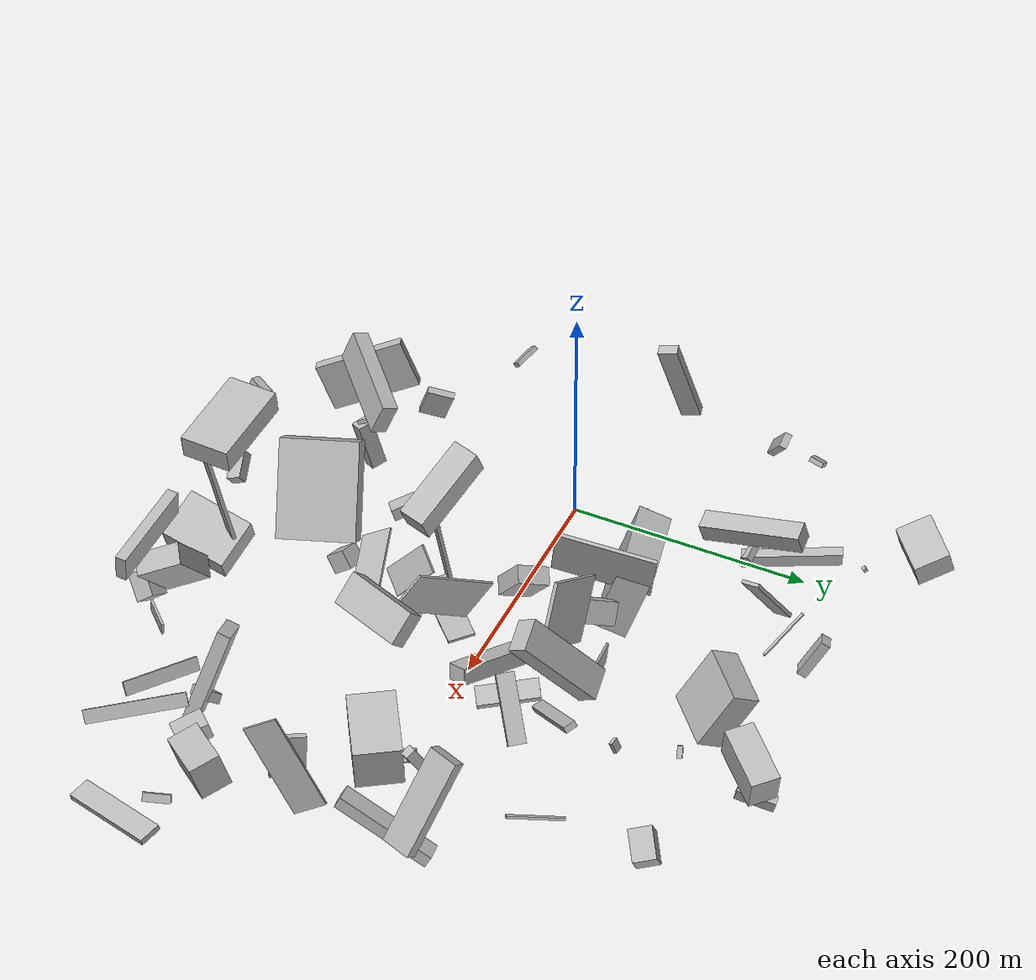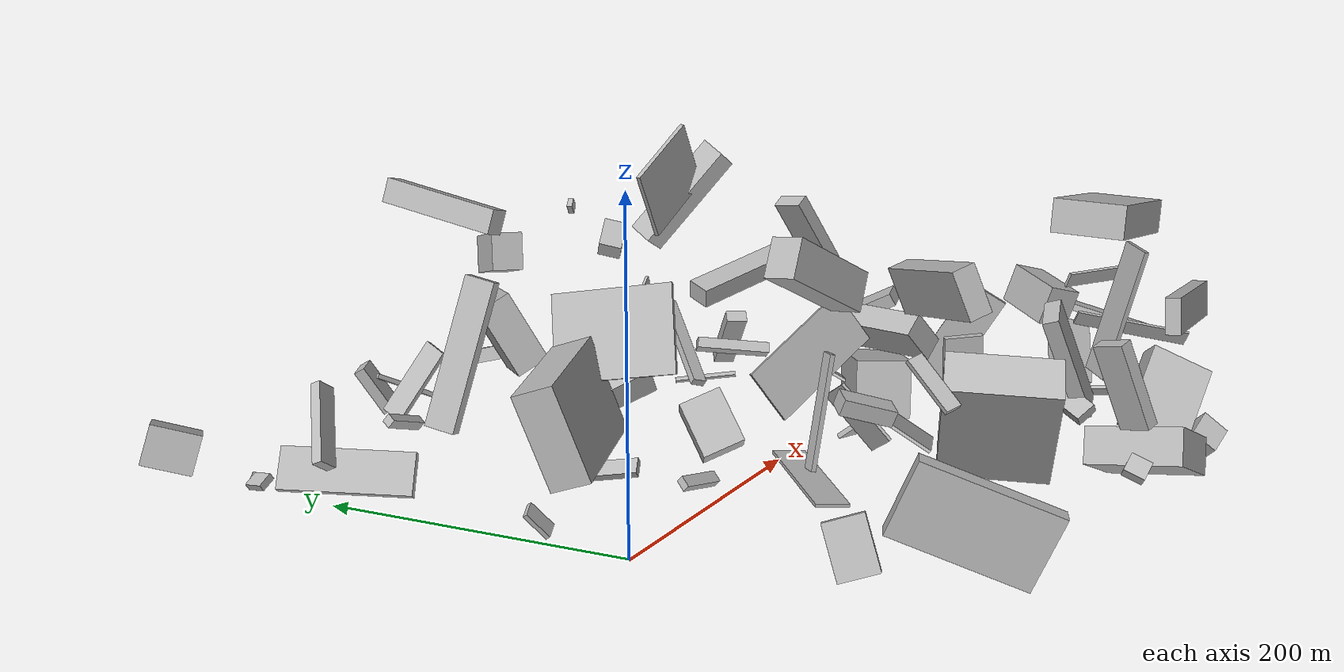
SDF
<sdf version="1.6">
 <world name="default">
  <scene>
   <sky><clouds><speed>12</speed></clouds></sky>
   <ambient>0.4 0.4 0.4 1</ambient>
   <background>0.7 0.7 0.7 1</background>
   <shadows>1</shadows>
  </scene>
  <gravity>0 0 -9.8066</gravity>
  <magnetic_field>6e-06 2.3e-05 -4.2e-05</magnetic_field>
  <physics default="0" name="default_physics" type="ode">
   <ode>
    <solver>
     <type>quick</type>
     <iters>10</iters>
     <sor>1.0</sor>
     <use_dynamic_moi_rescaling>0</use_dynamic_moi_rescaling>
    </solver>
    <constraints>
     <cfm>0</cfm>
     <erp>0.2</erp>
     <contact_max_correcting_vel>100</contact_max_correcting_vel>
     <contact_surface_layer>0.001</contact_surface_layer>
    </constraints>
   </ode>
   <max_step_size>0.004</max_step_size>
   <real_time_factor>1</real_time_factor>
   <real_time_update_rate>250</real_time_update_rate>
  </physics>
  <light name="sun" type="directional">
   <pose>0 0 10 0 0 0</pose>
   <diffuse>0.8 0.8 0.8 1</diffuse>
   <specular>0.2 0.2 0.2 1</specular>
   <attenuation>
    <range>1000</range>
    <constant>0.9</constant>
    <linear>0.01</linear>
    <quadratic>0.001</quadratic>
   </attenuation>
   <direction>-0.5 0.1 -0.9</direction>
  </light>
  <model name="building_1">
   <static>0</static>
   <pose>430.8263136940085 -161.70131128818474 9.466605463029902 1.6171492641649488 -0.9882049014473183 -2.855715015803919</pose>
   <link name="link">
    <gravity>0</gravity>
    <pose>0 0 11.0 0 0 0</pose>
    <collision name="collision"><geometry><box><size>7 3 22</size></box></geometry></collision>
    <visual name="visual">
     <cast_shadows>0</cast_shadows>
     <geometry><box><size>7 3 22</size></box></geometry>
     <material>
      <script>
       <uri>model://HANNAS_wall/materials/scripts</uri>
       <uri>model://HANNAS_wall/materials/textures</uri>
       <name>vrc/HANNAS_wall</name>
      </script>
     </material>
    </visual>
   </link>
  </model>
  <model name="building_2">
   <static>0</static>
   <pose>62.551764821610426 -142.76427907720768 97.82650740843052 1.2379356627731757 -0.7193909790254917 1.248309874934452</pose>
   <link name="link">
    <gravity>0</gravity>
    <pose>0 0 5.0 0 0 0</pose>
    <collision name="collision"><geometry><box><size>35 3 10</size></box></geometry></collision>
    <visual name="visual">
     <cast_shadows>0</cast_shadows>
     <geometry><box><size>35 3 10</size></box></geometry>
     <material>
      <script>
       <uri>model://HANNAS_wall/materials/scripts</uri>
       <uri>model://HANNAS_wall/materials/textures</uri>
       <name>vrc/HANNAS_wall</name>
      </script>
     </material>
    </visual>
   </link>
  </model>
  <model name="building_3">
   <static>0</static>
   <pose>251.2767208394601 -260.70147875214747 28.66937128211714 -0.7793488862594024 -0.5159328318028393 -0.26897297087756045</pose>
   <link name="link">
    <gravity>0</gravity>
    <pose>0 0 8.5 0 0 0</pose>
    <collision name="collision"><geometry><box><size>18 23 17</size></box></geometry></collision>
    <visual name="visual">
     <cast_shadows>0</cast_shadows>
     <geometry><box><size>18 23 17</size></box></geometry>
     <material>
      <script>
       <uri>model://HANNAS_wall/materials/scripts</uri>
       <uri>model://HANNAS_wall/materials/textures</uri>
       <name>vrc/HANNAS_wall</name>
      </script>
     </material>
    </visual>
   </link>
  </model>
  <model name="building_4">
   <static>0</static>
   <pose>167.25772231259472 -230.35305259501075 49.05170953395561 -2.767167087895499 1.1645042523255014 -2.91086231266983</pose>
   <link name="link">
    <gravity>0</gravity>
    <pose>0 0 21.0 0 0 0</pose>
    <collision name="collision"><geometry><box><size>22 57 42</size></box></geometry></collision>
    <visual name="visual">
     <cast_shadows>0</cast_shadows>
     <geometry><box><size>22 57 42</size></box></geometry>
     <material>
      <script>
       <uri>model://HANNAS_wall/materials/scripts</uri>
       <uri>model://HANNAS_wall/materials/textures</uri>
       <name>vrc/HANNAS_wall</name>
      </script>
     </material>
    </visual>
   </link>
  </model>
  <model name="building_5">
   <static>0</static>
   <pose>106.59794020016844 -245.33968757094155 56.62983458666531 -2.0357834085733573 0.3785618042685621 -1.5011525509562051</pose>
   <link name="link">
    <gravity>0</gravity>
    <pose>0 0 12.0 0 0 0</pose>
    <collision name="collision"><geometry><box><size>12 10 24</size></box></geometry></collision>
    <visual name="visual">
     <cast_shadows>0</cast_shadows>
     <geometry><box><size>12 10 24</size></box></geometry>
     <material>
      <script>
       <uri>model://HANNAS_wall/materials/scripts</uri>
       <uri>model://HANNAS_wall/materials/textures</uri>
       <name>vrc/HANNAS_wall</name>
      </script>
     </material>
    </visual>
   </link>
  </model>
  <model name="building_6">
   <static>0</static>
   <pose>229.80723237036378 -229.11642895965707 38.57481201956154 0.5488849251018836 -0.4299970350359862 1.9247059243491178</pose>
   <link name="link">
    <gravity>0</gravity>
    <pose>0 0 25.0 0 0 0</pose>
    <collision name="collision"><geometry><box><size>38 18 50</size></box></geometry></collision>
    <visual name="visual">
     <cast_shadows>0</cast_shadows>
     <geometry><box><size>38 18 50</size></box></geometry>
     <material>
      <script>
       <uri>model://HANNAS_wall/materials/scripts</uri>
       <uri>model://HANNAS_wall/materials/textures</uri>
       <name>vrc/HANNAS_wall</name>
      </script>
     </material>
    </visual>
   </link>
  </model>
  <model name="building_7">
   <static>0</static>
   <pose>81.66097739175035 -147.0577773170565 149.37455509283876 -2.720855311112564 -1.1946183886224258 1.9302838274795509</pose>
   <link name="link">
    <gravity>0</gravity>
    <pose>0 0 6.5 0 0 0</pose>
    <collision name="collision"><geometry><box><size>27 80 13</size></box></geometry></collision>
    <visual name="visual">
     <cast_shadows>0</cast_shadows>
     <geometry><box><size>27 80 13</size></box></geometry>
     <material>
      <script>
       <uri>model://HANNAS_wall/materials/scripts</uri>
       <uri>model://HANNAS_wall/materials/textures</uri>
       <name>vrc/HANNAS_wall</name>
      </script>
     </material>
    </visual>
   </link>
  </model>
  <model name="building_8">
   <static>0</static>
   <pose>268.66837884523653 -243.1983966291285 110.43156543119667 2.5954694184663896 1.4883504685091293 -2.1423371896197705</pose>
   <link name="link">
    <gravity>0</gravity>
    <pose>0 0 4.5 0 0 0</pose>
    <collision name="collision"><geometry><box><size>22 80 9</size></box></geometry></collision>
    <visual name="visual">
     <cast_shadows>0</cast_shadows>
     <geometry><box><size>22 80 9</size></box></geometry>
     <material>
      <script>
       <uri>model://HANNAS_wall/materials/scripts</uri>
       <uri>model://HANNAS_wall/materials/textures</uri>
       <name>vrc/HANNAS_wall</name>
      </script>
     </material>
    </visual>
   </link>
  </model>
  <model name="building_9">
   <static>0</static>
   <pose>388.18183163478705 -136.98014797581266 43.14530476585896 -0.5051339805458146 1.0219225418875078 -2.7485619086512</pose>
   <link name="link">
    <gravity>0</gravity>
    <pose>0 0 7.0 0 0 0</pose>
    <collision name="collision"><geometry><box><size>44 26 14</size></box></geometry></collision>
    <visual name="visual">
     <cast_shadows>0</cast_shadows>
     <geometry><box><size>44 26 14</size></box></geometry>
     <material>
      <script>
       <uri>model://HANNAS_wall/materials/scripts</uri>
       <uri>model://HANNAS_wall/materials/textures</uri>
       <name>vrc/HANNAS_wall</name>
      </script>
     </material>
    </visual>
   </link>
  </model>
  <model name="building_10">
   <static>0</static>
   <pose>270.46613417402324 58.90960341365753 110.9254743749462 2.836140064273815 0.240733890816135 2.6804442743922725</pose>
   <link name="link">
    <gravity>0</gravity>
    <pose>0 0 6.5 0 0 0</pose>
    <collision name="collision"><geometry><box><size>80 17 13</size></box></geometry></collision>
    <visual name="visual">
     <cast_shadows>0</cast_shadows>
     <geometry><box><size>80 17 13</size></box></geometry>
     <material>
      <script>
       <uri>model://HANNAS_wall/materials/scripts</uri>
       <uri>model://HANNAS_wall/materials/textures</uri>
       <name>vrc/HANNAS_wall</name>
      </script>
     </material>
    </visual>
   </link>
  </model>
  <model name="building_11">
   <static>0</static>
   <pose>139.2656520781938 44.32724979894509 95.19093340067072 1.7292905528808 -0.32041728901416217 -3.0017420129149426</pose>
   <link name="link">
    <gravity>0</gravity>
    <pose>0 0 40.0 0 0 0</pose>
    <collision name="collision"><geometry><box><size>3 57 80</size></box></geometry></collision>
    <visual name="visual">
     <cast_shadows>0</cast_shadows>
     <geometry><box><size>3 57 80</size></box></geometry>
     <material>
      <script>
       <uri>model://HANNAS_wall/materials/scripts</uri>
       <uri>model://HANNAS_wall/materials/textures</uri>
       <name>vrc/HANNAS_wall</name>
      </script>
     </material>
    </visual>
   </link>
  </model>
  <model name="building_12">
   <static>0</static>
   <pose>327.6667788939231 116.12963933377144 12.893298364794706 -3.025770638347501 0.45454335312678085 -2.61660695256297</pose>
   <link name="link">
    <gravity>0</gravity>
    <pose>0 0 1.0 0 0 0</pose>
    <collision name="collision"><geometry><box><size>4 45 2</size></box></geometry></collision>
    <visual name="visual">
     <cast_shadows>0</cast_shadows>
     <geometry><box><size>4 45 2</size></box></geometry>
     <material>
      <script>
       <uri>model://HANNAS_wall/materials/scripts</uri>
       <uri>model://HANNAS_wall/materials/textures</uri>
       <name>vrc/HANNAS_wall</name>
      </script>
     </material>
    </visual>
   </link>
  </model>
  <model name="building_13">
   <static>0</static>
   <pose>198.38156505484713 -22.402890775492438 71.50017005110476 1.8742247151230562 -0.9492574177380815 2.2428251752101143</pose>
   <link name="link">
    <gravity>0</gravity>
    <pose>0 0 1.0 0 0 0</pose>
    <collision name="collision"><geometry><box><size>38 80 2</size></box></geometry></collision>
    <visual name="visual">
     <cast_shadows>0</cast_shadows>
     <geometry><box><size>38 80 2</size></box></geometry>
     <material>
      <script>
       <uri>model://HANNAS_wall/materials/scripts</uri>
       <uri>model://HANNAS_wall/materials/textures</uri>
       <name>vrc/HANNAS_wall</name>
      </script>
     </material>
    </visual>
   </link>
  </model>
  <model name="building_14">
   <static>0</static>
   <pose>-31.56395456510294 -143.14256535925176 26.16620042066375 -0.29731102748056826 0.22567794583921638 0.3206685249543024</pose>
   <link name="link">
    <gravity>0</gravity>
    <pose>0 0 15.0 0 0 0</pose>
    <collision name="collision"><geometry><box><size>6 22 30</size></box></geometry></collision>
    <visual name="visual">
     <cast_shadows>0</cast_shadows>
     <geometry><box><size>6 22 30</size></box></geometry>
     <material>
      <script>
       <uri>model://HANNAS_wall/materials/scripts</uri>
       <uri>model://HANNAS_wall/materials/textures</uri>
       <name>vrc/HANNAS_wall</name>
      </script>
     </material>
    </visual>
   </link>
  </model>
  <model name="building_15">
   <static>0</static>
   <pose>390.1666998856054 -161.3324051590491 101.76477988952969 -0.06378880304285126 1.0548754887237481 0.8766586258933834</pose>
   <link name="link">
    <gravity>0</gravity>
    <pose>0 0 1.0 0 0 0</pose>
    <collision name="collision"><geometry><box><size>11 60 2</size></box></geometry></collision>
    <visual name="visual">
     <cast_shadows>0</cast_shadows>
     <geometry><box><size>11 60 2</size></box></geometry>
     <material>
      <script>
       <uri>model://HANNAS_wall/materials/scripts</uri>
       <uri>model://HANNAS_wall/materials/textures</uri>
       <name>vrc/HANNAS_wall</name>
      </script>
     </material>
    </visual>
   </link>
  </model>
  <model name="building_16">
   <static>0</static>
   <pose>-62.12972092125744 -80.82499755673206 76.12322841048112 -1.3881380062658693 -0.7447640865120262 1.2032691487958214</pose>
   <link name="link">
    <gravity>0</gravity>
    <pose>0 0 11.5 0 0 0</pose>
    <collision name="collision"><geometry><box><size>6 4 23</size></box></geometry></collision>
    <visual name="visual">
     <cast_shadows>0</cast_shadows>
     <geometry><box><size>6 4 23</size></box></geometry>
     <material>
      <script>
       <uri>model://HANNAS_wall/materials/scripts</uri>
       <uri>model://HANNAS_wall/materials/textures</uri>
       <name>vrc/HANNAS_wall</name>
      </script>
     </material>
    </visual>
   </link>
  </model>
  <model name="building_17">
   <static>0</static>
   <pose>238.55142604775997 115.9403474696835 151.94298209045425 -1.0000655131302576 0.09462455595126978 -1.677325518079287</pose>
   <link name="link">
    <gravity>0</gravity>
    <pose>0 0 29.5 0 0 0</pose>
    <collision name="collision"><geometry><box><size>3 52 59</size></box></geometry></collision>
    <visual name="visual">
     <cast_shadows>0</cast_shadows>
     <geometry><box><size>3 52 59</size></box></geometry>
     <material>
      <script>
       <uri>model://HANNAS_wall/materials/scripts</uri>
       <uri>model://HANNAS_wall/materials/textures</uri>
       <name>vrc/HANNAS_wall</name>
      </script>
     </material>
    </visual>
   </link>
  </model>
  <model name="building_18">
   <static>0</static>
   <pose>292.7779153200936 -37.20957112462413 28.603130103235543 1.6702274930733365 -0.03099686218678983 2.116560840008915</pose>
   <link name="link">
    <gravity>0</gravity>
    <pose>0 0 29.0 0 0 0</pose>
    <collision name="collision"><geometry><box><size>38 40 58</size></box></geometry></collision>
    <visual name="visual">
     <cast_shadows>0</cast_shadows>
     <geometry><box><size>38 40 58</size></box></geometry>
     <material>
      <script>
       <uri>model://HANNAS_wall/materials/scripts</uri>
       <uri>model://HANNAS_wall/materials/textures</uri>
       <name>vrc/HANNAS_wall</name>
      </script>
     </material>
    </visual>
   </link>
  </model>
  <model name="building_19">
   <static>0</static>
   <pose>361.7110779613713 -57.80650272388954 35.06598094407926 1.1587157811392172 1.404185807850506 0.17102479302428236</pose>
   <link name="link">
    <gravity>0</gravity>
    <pose>0 0 14.0 0 0 0</pose>
    <collision name="collision"><geometry><box><size>37 5 28</size></box></geometry></collision>
    <visual name="visual">
     <cast_shadows>0</cast_shadows>
     <geometry><box><size>37 5 28</size></box></geometry>
     <material>
      <script>
       <uri>model://HANNAS_wall/materials/scripts</uri>
       <uri>model://HANNAS_wall/materials/textures</uri>
       <name>vrc/HANNAS_wall</name>
      </script>
     </material>
    </visual>
   </link>
  </model>
  <model name="building_20">
   <static>0</static>
   <pose>137.3115261027869 -51.07300243624302 55.29548969622988 1.534870684071611 -1.4069636478725143 -0.7002356874009145</pose>
   <link name="link">
    <gravity>0</gravity>
    <pose>0 0 4.5 0 0 0</pose>
    <collision name="collision"><geometry><box><size>71 3 9</size></box></geometry></collision>
    <visual name="visual">
     <cast_shadows>0</cast_shadows>
     <geometry><box><size>71 3 9</size></box></geometry>
     <material>
      <script>
       <uri>model://HANNAS_wall/materials/scripts</uri>
       <uri>model://HANNAS_wall/materials/textures</uri>
       <name>vrc/HANNAS_wall</name>
      </script>
     </material>
    </visual>
   </link>
  </model>
  <model name="building_21">
   <static>0</static>
   <pose>257.0029182662432 60.60013214852117 52.822389749415024 0.41730781810167206 -0.09859340027801669 2.0954448100305045</pose>
   <link name="link">
    <gravity>0</gravity>
    <pose>0 0 3.5 0 0 0</pose>
    <collision name="collision"><geometry><box><size>49 16 7</size></box></geometry></collision>
    <visual name="visual">
     <cast_shadows>0</cast_shadows>
     <geometry><box><size>49 16 7</size></box></geometry>
     <material>
      <script>
       <uri>model://HANNAS_wall/materials/scripts</uri>
       <uri>model://HANNAS_wall/materials/textures</uri>
       <name>vrc/HANNAS_wall</name>
      </script>
     </material>
    </visual>
   </link>
  </model>
  <model name="building_22">
   <static>0</static>
   <pose>296.285058345666 -214.92285379806293 42.04906233782711 0.18725649658137883 -1.2895494379976817 0.6705174443024094</pose>
   <link name="link">
    <gravity>0</gravity>
    <pose>0 0 12.0 0 0 0</pose>
    <collision name="collision"><geometry><box><size>14 2 24</size></box></geometry></collision>
    <visual name="visual">
     <cast_shadows>0</cast_shadows>
     <geometry><box><size>14 2 24</size></box></geometry>
     <material>
      <script>
       <uri>model://HANNAS_wall/materials/scripts</uri>
       <uri>model://HANNAS_wall/materials/textures</uri>
       <name>vrc/HANNAS_wall</name>
      </script>
     </material>
    </visual>
   </link>
  </model>
  <model name="building_23">
   <static>0</static>
   <pose>-93.17700562350139 173.91090740568006 43.27045679358962 1.0161512228307399 0.12806249327123165 1.401452454995515</pose>
   <link name="link">
    <gravity>0</gravity>
    <pose>0 0 4.5 0 0 0</pose>
    <collision name="collision"><geometry><box><size>12 4 9</size></box></geometry></collision>
    <visual name="visual">
     <cast_shadows>0</cast_shadows>
     <geometry><box><size>12 4 9</size></box></geometry>
     <material>
      <script>
       <uri>model://HANNAS_wall/materials/scripts</uri>
       <uri>model://HANNAS_wall/materials/textures</uri>
       <name>vrc/HANNAS_wall</name>
      </script>
     </material>
    </visual>
   </link>
  </model>
  <model name="building_24">
   <static>0</static>
   <pose>296.3103842975701 261.83981367049944 100.28322323533803 1.5331593055031492 -0.20840503673864097 -2.324262875971162</pose>
   <link name="link">
    <gravity>0</gravity>
    <pose>0 0 11.5 0 0 0</pose>
    <collision name="collision"><geometry><box><size>50 28 23</size></box></geometry></collision>
    <visual name="visual">
     <cast_shadows>0</cast_shadows>
     <geometry><box><size>50 28 23</size></box></geometry>
     <material>
      <script>
       <uri>model://HANNAS_wall/materials/scripts</uri>
       <uri>model://HANNAS_wall/materials/textures</uri>
       <name>vrc/HANNAS_wall</name>
      </script>
     </material>
    </visual>
   </link>
  </model>
  <model name="building_25">
   <static>0</static>
   <pose>260.88548931080084 149.00889477249666 45.416643274850145 -2.7681411450894142 0.11970650542939033 -0.14563520190767537</pose>
   <link name="link">
    <gravity>0</gravity>
    <pose>0 0 5.0 0 0 0</pose>
    <collision name="collision"><geometry><box><size>7 3 10</size></box></geometry></collision>
    <visual name="visual">
     <cast_shadows>0</cast_shadows>
     <geometry><box><size>7 3 10</size></box></geometry>
     <material>
      <script>
       <uri>model://HANNAS_wall/materials/scripts</uri>
       <uri>model://HANNAS_wall/materials/textures</uri>
       <name>vrc/HANNAS_wall</name>
      </script>
     </material>
    </visual>
   </link>
  </model>
  <model name="building_26">
   <static>0</static>
   <pose>72.98279122073578 210.23037193739086 35.42247852689274 0.5174055192708985 -0.32973930714921135 1.2684892026479897</pose>
   <link name="link">
    <gravity>0</gravity>
    <pose>0 0 25.5 0 0 0</pose>
    <collision name="collision"><geometry><box><size>17 3 51</size></box></geometry></collision>
    <visual name="visual">
     <cast_shadows>0</cast_shadows>
     <geometry><box><size>17 3 51</size></box></geometry>
     <material>
      <script>
       <uri>model://HANNAS_wall/materials/scripts</uri>
       <uri>model://HANNAS_wall/materials/textures</uri>
       <name>vrc/HANNAS_wall</name>
      </script>
     </material>
    </visual>
   </link>
  </model>
  <model name="building_27">
   <static>0</static>
   <pose>162.20300851966206 -101.87224587182979 40.66956897964758 0.18665006140884485 -0.5438622129709311 1.7678173602736411</pose>
   <link name="link">
    <gravity>0</gravity>
    <pose>0 0 1.0 0 0 0</pose>
    <collision name="collision"><geometry><box><size>27 61 2</size></box></geometry></collision>
    <visual name="visual">
     <cast_shadows>0</cast_shadows>
     <geometry><box><size>27 61 2</size></box></geometry>
     <material>
      <script>
       <uri>model://HANNAS_wall/materials/scripts</uri>
       <uri>model://HANNAS_wall/materials/textures</uri>
       <name>vrc/HANNAS_wall</name>
      </script>
     </material>
    </visual>
   </link>
  </model>
  <model name="building_28">
   <static>0</static>
   <pose>137.87313356113188 94.03569757594018 46.87490028636654 1.1327963600034798 -0.4880472349329135 0.9450382277671397</pose>
   <link name="link">
    <gravity>0</gravity>
    <pose>0 0 16.0 0 0 0</pose>
    <collision name="collision"><geometry><box><size>14 19 32</size></box></geometry></collision>
    <visual name="visual">
     <cast_shadows>0</cast_shadows>
     <geometry><box><size>14 19 32</size></box></geometry>
     <material>
      <script>
       <uri>model://HANNAS_wall/materials/scripts</uri>
       <uri>model://HANNAS_wall/materials/textures</uri>
       <name>vrc/HANNAS_wall</name>
      </script>
     </material>
    </visual>
   </link>
  </model>
  <model name="building_29">
   <static>0</static>
   <pose>149.84977261734298 -137.89266706717115 16.32485836509435 1.8717714546420934 -0.8280266820086575 -2.0086346892463345</pose>
   <link name="link">
    <gravity>0</gravity>
    <pose>0 0 8.5 0 0 0</pose>
    <collision name="collision"><geometry><box><size>16 19 17</size></box></geometry></collision>
    <visual name="visual">
     <cast_shadows>0</cast_shadows>
     <geometry><box><size>16 19 17</size></box></geometry>
     <material>
      <script>
       <uri>model://HANNAS_wall/materials/scripts</uri>
       <uri>model://HANNAS_wall/materials/textures</uri>
       <name>vrc/HANNAS_wall</name>
      </script>
     </material>
    </visual>
   </link>
  </model>
  <model name="building_30">
   <static>0</static>
   <pose>186.49596117038325 192.60966700682255 65.77129403650193 1.6850917166500217 0.5081161344505125 2.384310792265199</pose>
   <link name="link">
    <gravity>0</gravity>
    <pose>0 0 24.0 0 0 0</pose>
    <collision name="collision"><geometry><box><size>24 53 48</size></box></geometry></collision>
    <visual name="visual">
     <cast_shadows>0</cast_shadows>
     <geometry><box><size>24 53 48</size></box></geometry>
     <material>
      <script>
       <uri>model://HANNAS_wall/materials/scripts</uri>
       <uri>model://HANNAS_wall/materials/textures</uri>
       <name>vrc/HANNAS_wall</name>
      </script>
     </material>
    </visual>
   </link>
  </model>
  <model name="building_31">
   <static>0</static>
   <pose>210.8398222492583 -198.63255486964493 77.16900223739992 -0.19350711849225002 -0.16406013463193123 2.394662011900718</pose>
   <link name="link">
    <gravity>0</gravity>
    <pose>0 0 40.0 0 0 0</pose>
    <collision name="collision"><geometry><box><size>3 19 80</size></box></geometry></collision>
    <visual name="visual">
     <cast_shadows>0</cast_shadows>
     <geometry><box><size>3 19 80</size></box></geometry>
     <material>
      <script>
       <uri>model://HANNAS_wall/materials/scripts</uri>
       <uri>model://HANNAS_wall/materials/textures</uri>
       <name>vrc/HANNAS_wall</name>
      </script>
     </material>
    </visual>
   </link>
  </model>
  <model name="building_32">
   <static>0</static>
   <pose>-65.65235547011628 72.39294871240091 81.05887054752421 0.23322839342181167 0.20819549253249708 0.2302161842044695</pose>
   <link name="link">
    <gravity>0</gravity>
    <pose>0 0 40.0 0 0 0</pose>
    <collision name="collision"><geometry><box><size>8 16 80</size></box></geometry></collision>
    <visual name="visual">
     <cast_shadows>0</cast_shadows>
     <geometry><box><size>8 16 80</size></box></geometry>
     <material>
      <script>
       <uri>model://HANNAS_wall/materials/scripts</uri>
       <uri>model://HANNAS_wall/materials/textures</uri>
       <name>vrc/HANNAS_wall</name>
      </script>
     </material>
    </visual>
   </link>
  </model>
  <model name="building_33">
   <static>0</static>
   <pose>225.42743773569018 118.37851271502605 75.63973786495028 1.678358795716275 -1.1150509890395004 -3.0443740357604536</pose>
   <link name="link">
    <gravity>0</gravity>
    <pose>0 0 1.0 0 0 0</pose>
    <collision name="collision"><geometry><box><size>16 80 2</size></box></geometry></collision>
    <visual name="visual">
     <cast_shadows>0</cast_shadows>
     <geometry><box><size>16 80 2</size></box></geometry>
     <material>
      <script>
       <uri>model://HANNAS_wall/materials/scripts</uri>
       <uri>model://HANNAS_wall/materials/textures</uri>
       <name>vrc/HANNAS_wall</name>
      </script>
     </material>
    </visual>
   </link>
  </model>
  <model name="building_34">
   <static>0</static>
   <pose>193.70434785046336 -59.29101212167987 32.6633712637281 2.959280401839803 0.891328132399601 -1.8555884062510741</pose>
   <link name="link">
    <gravity>0</gravity>
    <pose>0 0 6.0 0 0 0</pose>
    <collision name="collision"><geometry><box><size>3 27 12</size></box></geometry></collision>
    <visual name="visual">
     <cast_shadows>0</cast_shadows>
     <geometry><box><size>3 27 12</size></box></geometry>
     <material>
      <script>
       <uri>model://HANNAS_wall/materials/scripts</uri>
       <uri>model://HANNAS_wall/materials/textures</uri>
       <name>vrc/HANNAS_wall</name>
      </script>
     </material>
    </visual>
   </link>
  </model>
  <model name="building_35">
   <static>0</static>
   <pose>391.63043058621554 -59.733344100566754 49.4914375174826 -1.7846840237637192 -0.5321661399155794 1.8395598472368517</pose>
   <link name="link">
    <gravity>0</gravity>
    <pose>0 0 1.0 0 0 0</pose>
    <collision name="collision"><geometry><box><size>29 80 2</size></box></geometry></collision>
    <visual name="visual">
     <cast_shadows>0</cast_shadows>
     <geometry><box><size>29 80 2</size></box></geometry>
     <material>
      <script>
       <uri>model://HANNAS_wall/materials/scripts</uri>
       <uri>model://HANNAS_wall/materials/textures</uri>
       <name>vrc/HANNAS_wall</name>
      </script>
     </material>
    </visual>
   </link>
  </model>
  <model name="building_36">
   <static>0</static>
   <pose>103.57388010495022 69.7702233759378 9.478890167462279 -0.19913594429005418 -0.6567798846560428 0.3465274891919858</pose>
   <link name="link">
    <gravity>0</gravity>
    <pose>0 0 2.5 0 0 0</pose>
    <collision name="collision"><geometry><box><size>11 36 5</size></box></geometry></collision>
    <visual name="visual">
     <cast_shadows>0</cast_shadows>
     <geometry><box><size>11 36 5</size></box></geometry>
     <material>
      <script>
       <uri>model://HANNAS_wall/materials/scripts</uri>
       <uri>model://HANNAS_wall/materials/textures</uri>
       <name>vrc/HANNAS_wall</name>
      </script>
     </material>
    </visual>
   </link>
  </model>
  <model name="building_37">
   <static>0</static>
   <pose>308.6517804190448 120.38801593686723 147.9777430057957 -0.9482057046466893 0.858454095036687 2.167043286717458</pose>
   <link name="link">
    <gravity>0</gravity>
    <pose>0 0 12.5 0 0 0</pose>
    <collision name="collision"><geometry><box><size>80 17 25</size></box></geometry></collision>
    <visual name="visual">
     <cast_shadows>0</cast_shadows>
     <geometry><box><size>80 17 25</size></box></geometry>
     <material>
      <script>
       <uri>model://HANNAS_wall/materials/scripts</uri>
       <uri>model://HANNAS_wall/materials/textures</uri>
       <name>vrc/HANNAS_wall</name>
      </script>
     </material>
    </visual>
   </link>
  </model>
  <model name="building_38">
   <static>0</static>
   <pose>-6.086192640727586 -227.24620938495437 44.26822577788622 -1.1874063316440973 -0.14667514800284856 0.35950150565464745</pose>
   <link name="link">
    <gravity>0</gravity>
    <pose>0 0 37.5 0 0 0</pose>
    <collision name="collision"><geometry><box><size>9 42 75</size></box></geometry></collision>
    <visual name="visual">
     <cast_shadows>0</cast_shadows>
     <geometry><box><size>9 42 75</size></box></geometry>
     <material>
      <script>
       <uri>model://HANNAS_wall/materials/scripts</uri>
       <uri>model://HANNAS_wall/materials/textures</uri>
       <name>vrc/HANNAS_wall</name>
      </script>
     </material>
    </visual>
   </link>
  </model>
  <model name="building_39">
   <static>0</static>
   <pose>323.0208741053813 -157.57330578068283 18.75582946617591 -0.9043436691968875 0.3719727649058882 -2.0388024542216643</pose>
   <link name="link">
    <gravity>0</gravity>
    <pose>0 0 7.5 0 0 0</pose>
    <collision name="collision"><geometry><box><size>20 8 15</size></box></geometry></collision>
    <visual name="visual">
     <cast_shadows>0</cast_shadows>
     <geometry><box><size>20 8 15</size></box></geometry>
     <material>
      <script>
       <uri>model://HANNAS_wall/materials/scripts</uri>
       <uri>model://HANNAS_wall/materials/textures</uri>
       <name>vrc/HANNAS_wall</name>
      </script>
     </material>
    </visual>
   </link>
  </model>
  <model name="building_40">
   <static>0</static>
   <pose>251.17766542853414 262.7111746445382 29.774432784804542 1.667950416951095 0.23988103690882034 1.7702980502758765</pose>
   <link name="link">
    <gravity>0</gravity>
    <pose>0 0 4.0 0 0 0</pose>
    <collision name="collision"><geometry><box><size>31 10 8</size></box></geometry></collision>
    <visual name="visual">
     <cast_shadows>0</cast_shadows>
     <geometry><box><size>31 10 8</size></box></geometry>
     <material>
      <script>
       <uri>model://HANNAS_wall/materials/scripts</uri>
       <uri>model://HANNAS_wall/materials/textures</uri>
       <name>vrc/HANNAS_wall</name>
      </script>
     </material>
    </visual>
   </link>
  </model>
  <model name="building_41">
   <static>0</static>
   <pose>137.400937623444 -161.0451047799595 74.94409758886543 2.2340043887866674 0.03900522217140064 -1.2618977217924203</pose>
   <link name="link">
    <gravity>0</gravity>
    <pose>0 0 13.5 0 0 0</pose>
    <collision name="collision"><geometry><box><size>64 80 27</size></box></geometry></collision>
    <visual name="visual">
     <cast_shadows>0</cast_shadows>
     <geometry><box><size>64 80 27</size></box></geometry>
     <material>
      <script>
       <uri>model://HANNAS_wall/materials/scripts</uri>
       <uri>model://HANNAS_wall/materials/textures</uri>
       <name>vrc/HANNAS_wall</name>
      </script>
     </material>
    </visual>
   </link>
  </model>
  <model name="building_42">
   <static>0</static>
   <pose>39.740493786684944 -161.74147574124243 41.38279431673707 1.7901106909456062 0.1649090470021738 -0.5464479316659973</pose>
   <link name="link">
    <gravity>0</gravity>
    <pose>0 0 6.0 0 0 0</pose>
    <collision name="collision"><geometry><box><size>13 41 12</size></box></geometry></collision>
    <visual name="visual">
     <cast_shadows>0</cast_shadows>
     <geometry><box><size>13 41 12</size></box></geometry>
     <material>
      <script>
       <uri>model://HANNAS_wall/materials/scripts</uri>
       <uri>model://HANNAS_wall/materials/textures</uri>
       <name>vrc/HANNAS_wall</name>
      </script>
     </material>
    </visual>
   </link>
  </model>
  <model name="building_43">
   <static>0</static>
   <pose>331.50057042724166 -159.26843464412437 55.14451729447933 1.8733614403889056 0.37885997145576833 -2.941230212528463</pose>
   <link name="link">
    <gravity>0</gravity>
    <pose>0 0 5.5 0 0 0</pose>
    <collision name="collision"><geometry><box><size>26 80 11</size></box></geometry></collision>
    <visual name="visual">
     <cast_shadows>0</cast_shadows>
     <geometry><box><size>26 80 11</size></box></geometry>
     <material>
      <script>
       <uri>model://HANNAS_wall/materials/scripts</uri>
       <uri>model://HANNAS_wall/materials/textures</uri>
       <name>vrc/HANNAS_wall</name>
      </script>
     </material>
    </visual>
   </link>
  </model>
  <model name="building_44">
   <static>0</static>
   <pose>396.7500780587622 -181.78830086127607 64.73889395346406 0.3638485015495143 0.9891271623839925 0.7899120133056332</pose>
   <link name="link">
    <gravity>0</gravity>
    <pose>0 0 1.0 0 0 0</pose>
    <collision name="collision"><geometry><box><size>11 80 2</size></box></geometry></collision>
    <visual name="visual">
     <cast_shadows>0</cast_shadows>
     <geometry><box><size>11 80 2</size></box></geometry>
     <material>
      <script>
       <uri>model://HANNAS_wall/materials/scripts</uri>
       <uri>model://HANNAS_wall/materials/textures</uri>
       <name>vrc/HANNAS_wall</name>
      </script>
     </material>
    </visual>
   </link>
  </model>
  <model name="building_45">
   <static>0</static>
   <pose>323.16868097639804 7.930550191124348 25.2616911024671 0.25727925695483045 -0.4445361409011351 1.6264431762616263</pose>
   <link name="link">
    <gravity>0</gravity>
    <pose>0 0 1.0 0 0 0</pose>
    <collision name="collision"><geometry><box><size>14 12 2</size></box></geometry></collision>
    <visual name="visual">
     <cast_shadows>0</cast_shadows>
     <geometry><box><size>14 12 2</size></box></geometry>
     <material>
      <script>
       <uri>model://HANNAS_wall/materials/scripts</uri>
       <uri>model://HANNAS_wall/materials/textures</uri>
       <name>vrc/HANNAS_wall</name>
      </script>
     </material>
    </visual>
   </link>
  </model>
  <model name="building_46">
   <static>0</static>
   <pose>92.46182631634925 -230.7197924276219 124.12935826056786 -2.8286907519546283 -0.19465162463800417 -2.013356885658162</pose>
   <link name="link">
    <gravity>0</gravity>
    <pose>0 0 24.0 0 0 0</pose>
    <collision name="collision"><geometry><box><size>18 8 48</size></box></geometry></collision>
    <visual name="visual">
     <cast_shadows>0</cast_shadows>
     <geometry><box><size>18 8 48</size></box></geometry>
     <material>
      <script>
       <uri>model://HANNAS_wall/materials/scripts</uri>
       <uri>model://HANNAS_wall/materials/textures</uri>
       <name>vrc/HANNAS_wall</name>
      </script>
     </material>
    </visual>
   </link>
  </model>
  <model name="building_47">
   <static>0</static>
   <pose>258.97228654616845 58.42819324090955 77.64658498579114 -3.093894675261352 -0.8064665926483596 0.6100781816839185</pose>
   <link name="link">
    <gravity>0</gravity>
    <pose>0 0 27.5 0 0 0</pose>
    <collision name="collision"><geometry><box><size>8 14 55</size></box></geometry></collision>
    <visual name="visual">
     <cast_shadows>0</cast_shadows>
     <geometry><box><size>8 14 55</size></box></geometry>
     <material>
      <script>
       <uri>model://HANNAS_wall/materials/scripts</uri>
       <uri>model://HANNAS_wall/materials/textures</uri>
       <name>vrc/HANNAS_wall</name>
      </script>
     </material>
    </visual>
   </link>
  </model>
  <model name="building_48">
   <static>0</static>
   <pose>415.13344021448415 33.088713933791354 46.410030434672336 0.47832852587396674 0.222624147563475 -2.9813716622015773</pose>
   <link name="link">
    <gravity>0</gravity>
    <pose>0 0 5.0 0 0 0</pose>
    <collision name="collision"><geometry><box><size>17 80 10</size></box></geometry></collision>
    <visual name="visual">
     <cast_shadows>0</cast_shadows>
     <geometry><box><size>17 80 10</size></box></geometry>
     <material>
      <script>
       <uri>model://HANNAS_wall/materials/scripts</uri>
       <uri>model://HANNAS_wall/materials/textures</uri>
       <name>vrc/HANNAS_wall</name>
      </script>
     </material>
    </visual>
   </link>
  </model>
  <model name="building_49">
   <static>0</static>
   <pose>123.01037684192225 161.24774124925693 154.7671310952594 -1.3662183325316413 0.19122743091546893 0.0706561896560492</pose>
   <link name="link">
    <gravity>0</gravity>
    <pose>0 0 40.0 0 0 0</pose>
    <collision name="collision"><geometry><box><size>16 16 80</size></box></geometry></collision>
    <visual name="visual">
     <cast_shadows>0</cast_shadows>
     <geometry><box><size>16 16 80</size></box></geometry>
     <material>
      <script>
       <uri>model://HANNAS_wall/materials/scripts</uri>
       <uri>model://HANNAS_wall/materials/textures</uri>
       <name>vrc/HANNAS_wall</name>
      </script>
     </material>
    </visual>
   </link>
  </model>
  <model name="building_50">
   <static>0</static>
   <pose>52.291489517239505 80.61054863319694 41.985816119263916 1.1436343077200635 -1.2189104789162175 2.213465183276103</pose>
   <link name="link">
    <gravity>0</gravity>
    <pose>0 0 40.0 0 0 0</pose>
    <collision name="collision"><geometry><box><size>64 27 80</size></box></geometry></collision>
    <visual name="visual">
     <cast_shadows>0</cast_shadows>
     <geometry><box><size>64 27 80</size></box></geometry>
     <material>
      <script>
       <uri>model://HANNAS_wall/materials/scripts</uri>
       <uri>model://HANNAS_wall/materials/textures</uri>
       <name>vrc/HANNAS_wall</name>
      </script>
     </material>
    </visual>
   </link>
  </model>
  <model name="building_51">
   <static>0</static>
   <pose>122.04888799742193 214.3817020836328 36.579966679086404 0.4318188535496493 1.0645303287990386 -3.0926877973279754</pose>
   <link name="link">
    <gravity>0</gravity>
    <pose>0 0 22.0 0 0 0</pose>
    <collision name="collision"><geometry><box><size>3 2 44</size></box></geometry></collision>
    <visual name="visual">
     <cast_shadows>0</cast_shadows>
     <geometry><box><size>3 2 44</size></box></geometry>
     <material>
      <script>
       <uri>model://HANNAS_wall/materials/scripts</uri>
       <uri>model://HANNAS_wall/materials/textures</uri>
       <name>vrc/HANNAS_wall</name>
      </script>
     </material>
    </visual>
   </link>
  </model>
  <model name="building_52">
   <static>0</static>
   <pose>-54.5053203226008 270.6731286716365 39.77641867121413 1.7751488624060798 -0.3076764033395686 2.2704683653663387</pose>
   <link name="link">
    <gravity>0</gravity>
    <pose>0 0 20.5 0 0 0</pose>
    <collision name="collision"><geometry><box><size>30 24 41</size></box></geometry></collision>
    <visual name="visual">
     <cast_shadows>0</cast_shadows>
     <geometry><box><size>30 24 41</size></box></geometry>
     <material>
      <script>
       <uri>model://HANNAS_wall/materials/scripts</uri>
       <uri>model://HANNAS_wall/materials/textures</uri>
       <name>vrc/HANNAS_wall</name>
      </script>
     </material>
    </visual>
   </link>
  </model>
  <model name="building_53">
   <static>0</static>
   <pose>180.85297753194587 -53.75118174533263 118.97169875283673 1.1297814707061988 -0.0967826592591941 -1.8215742928849574</pose>
   <link name="link">
    <gravity>0</gravity>
    <pose>0 0 34.5 0 0 0</pose>
    <collision name="collision"><geometry><box><size>22 25 69</size></box></geometry></collision>
    <visual name="visual">
     <cast_shadows>0</cast_shadows>
     <geometry><box><size>22 25 69</size></box></geometry>
     <material>
      <script>
       <uri>model://HANNAS_wall/materials/scripts</uri>
       <uri>model://HANNAS_wall/materials/textures</uri>
       <name>vrc/HANNAS_wall</name>
      </script>
     </material>
    </visual>
   </link>
  </model>
  <model name="building_54">
   <static>0</static>
   <pose>168.6057387888552 -60.18154487148289 40.782286462510996 -0.7478384220691519 -0.8378943589946621 1.7637547348349614</pose>
   <link name="link">
    <gravity>0</gravity>
    <pose>0 0 12.0 0 0 0</pose>
    <collision name="collision"><geometry><box><size>44 2 24</size></box></geometry></collision>
    <visual name="visual">
     <cast_shadows>0</cast_shadows>
     <geometry><box><size>44 2 24</size></box></geometry>
     <material>
      <script>
       <uri>model://HANNAS_wall/materials/scripts</uri>
       <uri>model://HANNAS_wall/materials/textures</uri>
       <name>vrc/HANNAS_wall</name>
      </script>
     </material>
    </visual>
   </link>
  </model>
  <model name="building_55">
   <static>0</static>
   <pose>336.1127570374801 20.671974551493435 40.81171631551263 -1.9326706549480441 -1.034813340463956 -0.028302899424334473</pose>
   <link name="link">
    <gravity>0</gravity>
    <pose>0 0 3.0 0 0 0</pose>
    <collision name="collision"><geometry><box><size>57 9 6</size></box></geometry></collision>
    <visual name="visual">
     <cast_shadows>0</cast_shadows>
     <geometry><box><size>57 9 6</size></box></geometry>
     <material>
      <script>
       <uri>model://HANNAS_wall/materials/scripts</uri>
       <uri>model://HANNAS_wall/materials/textures</uri>
       <name>vrc/HANNAS_wall</name>
      </script>
     </material>
    </visual>
   </link>
  </model>
  <model name="building_56">
   <static>0</static>
   <pose>193.52334104884207 -183.6663764123371 175.0030393838687 -1.9470915014466519 1.4845672578716167 2.6917950337800822</pose>
   <link name="link">
    <gravity>0</gravity>
    <pose>0 0 20.5 0 0 0</pose>
    <collision name="collision"><geometry><box><size>19 72 41</size></box></geometry></collision>
    <visual name="visual">
     <cast_shadows>0</cast_shadows>
     <geometry><box><size>19 72 41</size></box></geometry>
     <material>
      <script>
       <uri>model://HANNAS_wall/materials/scripts</uri>
       <uri>model://HANNAS_wall/materials/textures</uri>
       <name>vrc/HANNAS_wall</name>
      </script>
     </material>
    </visual>
   </link>
  </model>
  <model name="building_57">
   <static>0</static>
   <pose>110.91264585400046 247.31822127202747 42.28602101594516 -2.735529504195276 1.0094295021468027 -0.8979172073521631</pose>
   <link name="link">
    <gravity>0</gravity>
    <pose>0 0 4.0 0 0 0</pose>
    <collision name="collision"><geometry><box><size>34 13 8</size></box></geometry></collision>
    <visual name="visual">
     <cast_shadows>0</cast_shadows>
     <geometry><box><size>34 13 8</size></box></geometry>
     <material>
      <script>
       <uri>model://HANNAS_wall/materials/scripts</uri>
       <uri>model://HANNAS_wall/materials/textures</uri>
       <name>vrc/HANNAS_wall</name>
      </script>
     </material>
    </visual>
   </link>
  </model>
  <model name="building_58">
   <static>0</static>
   <pose>39.67436468325323 165.06447929959185 45.283061502481594 -1.222183224959829 -0.578047853517584 1.308797002598152</pose>
   <link name="link">
    <gravity>0</gravity>
    <pose>0 0 14.0 0 0 0</pose>
    <collision name="collision"><geometry><box><size>6 6 28</size></box></geometry></collision>
    <visual name="visual">
     <cast_shadows>0</cast_shadows>
     <geometry><box><size>6 6 28</size></box></geometry>
     <material>
      <script>
       <uri>model://HANNAS_wall/materials/scripts</uri>
       <uri>model://HANNAS_wall/materials/textures</uri>
       <name>vrc/HANNAS_wall</name>
      </script>
     </material>
    </visual>
   </link>
  </model>
  <model name="building_59">
   <static>0</static>
   <pose>395.97115506557424 223.321521572386 96.4199849734936 1.3065763913775565 -0.5098765969250078 -2.556997892562005</pose>
   <link name="link">
    <gravity>0</gravity>
    <pose>0 0 9.0 0 0 0</pose>
    <collision name="collision"><geometry><box><size>25 22 18</size></box></geometry></collision>
    <visual name="visual">
     <cast_shadows>0</cast_shadows>
     <geometry><box><size>25 22 18</size></box></geometry>
     <material>
      <script>
       <uri>model://HANNAS_wall/materials/scripts</uri>
       <uri>model://HANNAS_wall/materials/textures</uri>
       <name>vrc/HANNAS_wall</name>
      </script>
     </material>
    </visual>
   </link>
  </model>
  <model name="building_60">
   <static>0</static>
   <pose>442.21944211366605 -115.26486178202894 71.87756170812082 0.6847283520148831 -1.2578000373354845 -1.366484582022233</pose>
   <link name="link">
    <gravity>0</gravity>
    <pose>0 0 12.5 0 0 0</pose>
    <collision name="collision"><geometry><box><size>28 47 25</size></box></geometry></collision>
    <visual name="visual">
     <cast_shadows>0</cast_shadows>
     <geometry><box><size>28 47 25</size></box></geometry>
     <material>
      <script>
       <uri>model://HANNAS_wall/materials/scripts</uri>
       <uri>model://HANNAS_wall/materials/textures</uri>
       <name>vrc/HANNAS_wall</name>
      </script>
     </material>
    </visual>
   </link>
  </model>
  <model name="building_61">
   <static>0</static>
   <pose>477.22856234374564 -148.76920921932887 52.895419792119746 -1.7221639431245286 0.13314143126004985 -1.9045549378934283</pose>
   <link name="link">
    <gravity>0</gravity>
    <pose>0 0 9.0 0 0 0</pose>
    <collision name="collision"><geometry><box><size>80 5 18</size></box></geometry></collision>
    <visual name="visual">
     <cast_shadows>0</cast_shadows>
     <geometry><box><size>80 5 18</size></box></geometry>
     <material>
      <script>
       <uri>model://HANNAS_wall/materials/scripts</uri>
       <uri>model://HANNAS_wall/materials/textures</uri>
       <name>vrc/HANNAS_wall</name>
      </script>
     </material>
    </visual>
   </link>
  </model>
  <model name="building_62">
   <static>0</static>
   <pose>252.5373490665689 -58.6484028735171 73.05292080629336 -0.018468813579724346 -0.8079940439211403 -0.33617380783268147</pose>
   <link name="link">
    <gravity>0</gravity>
    <pose>0 0 14.0 0 0 0</pose>
    <collision name="collision"><geometry><box><size>16 63 28</size></box></geometry></collision>
    <visual name="visual">
     <cast_shadows>0</cast_shadows>
     <geometry><box><size>16 63 28</size></box></geometry>
     <material>
      <script>
       <uri>model://HANNAS_wall/materials/scripts</uri>
       <uri>model://HANNAS_wall/materials/textures</uri>
       <name>vrc/HANNAS_wall</name>
      </script>
     </material>
    </visual>
   </link>
  </model>
  <model name="building_63">
   <static>0</static>
   <pose>123.24175501702396 -102.88243985473805 62.778378553761264 1.273084092509961 0.22916793992514328 -2.5027182786682034</pose>
   <link name="link">
    <gravity>0</gravity>
    <pose>0 0 16.5 0 0 0</pose>
    <collision name="collision"><geometry><box><size>14 10 33</size></box></geometry></collision>
    <visual name="visual">
     <cast_shadows>0</cast_shadows>
     <geometry><box><size>14 10 33</size></box></geometry>
     <material>
      <script>
       <uri>model://HANNAS_wall/materials/scripts</uri>
       <uri>model://HANNAS_wall/materials/textures</uri>
       <name>vrc/HANNAS_wall</name>
      </script>
     </material>
    </visual>
   </link>
  </model>
  <model name="building_64">
   <static>0</static>
   <pose>445.8729831174375 62.024925879890176 72.27627563637292 -0.612001228798667 0.09718290383753127 1.2820899881522174</pose>
   <link name="link">
    <gravity>0</gravity>
    <pose>0 0 40.0 0 0 0</pose>
    <collision name="collision"><geometry><box><size>24 11 80</size></box></geometry></collision>
    <visual name="visual">
     <cast_shadows>0</cast_shadows>
     <geometry><box><size>24 11 80</size></box></geometry>
     <material>
      <script>
       <uri>model://HANNAS_wall/materials/scripts</uri>
       <uri>model://HANNAS_wall/materials/textures</uri>
       <name>vrc/HANNAS_wall</name>
      </script>
     </material>
    </visual>
   </link>
  </model>
  <model name="building_65">
   <static>0</static>
   <pose>2.3849816613884744 189.28716326205821 21.404638447436582 1.0665233611496931 0.04143874310820633 -1.1527452752039318</pose>
   <link name="link">
    <gravity>0</gravity>
    <pose>0 0 3.5 0 0 0</pose>
    <collision name="collision"><geometry><box><size>80 26 7</size></box></geometry></collision>
    <visual name="visual">
     <cast_shadows>0</cast_shadows>
     <geometry><box><size>80 26 7</size></box></geometry>
     <material>
      <script>
       <uri>model://HANNAS_wall/materials/scripts</uri>
       <uri>model://HANNAS_wall/materials/textures</uri>
       <name>vrc/HANNAS_wall</name>
      </script>
     </material>
    </visual>
   </link>
  </model>
  <model name="building_66">
   <static>0</static>
   <pose>240.15229288581753 78.17450539171021 32.76854201374569 0.4503818213518211 0.9317856244657179 1.3318362563646586</pose>
   <link name="link">
    <gravity>0</gravity>
    <pose>0 0 40.0 0 0 0</pose>
    <collision name="collision"><geometry><box><size>5 10 80</size></box></geometry></collision>
    <visual name="visual">
     <cast_shadows>0</cast_shadows>
     <geometry><box><size>5 10 80</size></box></geometry>
     <material>
      <script>
       <uri>model://HANNAS_wall/materials/scripts</uri>
       <uri>model://HANNAS_wall/materials/textures</uri>
       <name>vrc/HANNAS_wall</name>
      </script>
     </material>
    </visual>
   </link>
  </model>
  <model name="building_67">
   <static>0</static>
   <pose>123.23659515093618 10.986770201809321 43.70782166171057 2.145402651746468 0.35165071072603865 2.2902998581618323</pose>
   <link name="link">
    <gravity>0</gravity>
    <pose>0 0 7.5 0 0 0</pose>
    <collision name="collision"><geometry><box><size>27 36 15</size></box></geometry></collision>
    <visual name="visual">
     <cast_shadows>0</cast_shadows>
     <geometry><box><size>27 36 15</size></box></geometry>
     <material>
      <script>
       <uri>model://HANNAS_wall/materials/scripts</uri>
       <uri>model://HANNAS_wall/materials/textures</uri>
       <name>vrc/HANNAS_wall</name>
      </script>
     </material>
    </visual>
   </link>
  </model>
  <model name="building_68">
   <static>0</static>
   <pose>-71.57933465465258 148.74800501748078 76.92711493786328 -2.5147904158378895 0.8547009634852859 -2.4823233136039535</pose>
   <link name="link">
    <gravity>0</gravity>
    <pose>0 0 6.0 0 0 0</pose>
    <collision name="collision"><geometry><box><size>47 6 12</size></box></geometry></collision>
    <visual name="visual">
     <cast_shadows>0</cast_shadows>
     <geometry><box><size>47 6 12</size></box></geometry>
     <material>
      <script>
       <uri>model://HANNAS_wall/materials/scripts</uri>
       <uri>model://HANNAS_wall/materials/textures</uri>
       <name>vrc/HANNAS_wall</name>
      </script>
     </material>
    </visual>
   </link>
  </model>
  <model name="building_69">
   <static>0</static>
   <pose>0.9122365509457255 58.954676842234086 12.02841554112413 -0.5359809053311204 -0.8357591514456978 2.297293420486936</pose>
   <link name="link">
    <gravity>0</gravity>
    <pose>0 0 1.5 0 0 0</pose>
    <collision name="collision"><geometry><box><size>19 11 3</size></box></geometry></collision>
    <visual name="visual">
     <cast_shadows>0</cast_shadows>
     <geometry><box><size>19 11 3</size></box></geometry>
     <material>
      <script>
       <uri>model://HANNAS_wall/materials/scripts</uri>
       <uri>model://HANNAS_wall/materials/textures</uri>
       <name>vrc/HANNAS_wall</name>
      </script>
     </material>
    </visual>
   </link>
  </model>
  <model name="building_70">
   <static>0</static>
   <pose>144.80879372150372 -33.38641526545651 8.543915502929046 1.67309303982513 -0.1170562873330726 0.7392560016239674</pose>
   <link name="link">
    <gravity>0</gravity>
    <pose>0 0 11.0 0 0 0</pose>
    <collision name="collision"><geometry><box><size>80 2 22</size></box></geometry></collision>
    <visual name="visual">
     <cast_shadows>0</cast_shadows>
     <geometry><box><size>80 2 22</size></box></geometry>
     <material>
      <script>
       <uri>model://HANNAS_wall/materials/scripts</uri>
       <uri>model://HANNAS_wall/materials/textures</uri>
       <name>vrc/HANNAS_wall</name>
      </script>
     </material>
    </visual>
   </link>
  </model>
  <model name="building_71">
   <static>0</static>
   <pose>324.22490642530977 228.8780636167272 131.01016696956077 0.8098197816761806 0.0035222926565555957 1.860308272157995</pose>
   <link name="link">
    <gravity>0</gravity>
    <pose>0 0 4.0 0 0 0</pose>
    <collision name="collision"><geometry><box><size>4 9 8</size></box></geometry></collision>
    <visual name="visual">
     <cast_shadows>0</cast_shadows>
     <geometry><box><size>4 9 8</size></box></geometry>
     <material>
      <script>
       <uri>model://HANNAS_wall/materials/scripts</uri>
       <uri>model://HANNAS_wall/materials/textures</uri>
       <name>vrc/HANNAS_wall</name>
      </script>
     </material>
    </visual>
   </link>
  </model>
  <model name="building_72">
   <static>0</static>
   <pose>-18.770150846326914 242.48796950565531 17.36557361773467 -1.8864399169949102 0.4837851640620322 -0.8505702245358062</pose>
   <link name="link">
    <gravity>0</gravity>
    <pose>0 0 1.5 0 0 0</pose>
    <collision name="collision"><geometry><box><size>3 6 3</size></box></geometry></collision>
    <visual name="visual">
     <cast_shadows>0</cast_shadows>
     <geometry><box><size>3 6 3</size></box></geometry>
     <material>
      <script>
       <uri>model://HANNAS_wall/materials/scripts</uri>
       <uri>model://HANNAS_wall/materials/textures</uri>
       <name>vrc/HANNAS_wall</name>
      </script>
     </material>
    </visual>
   </link>
  </model>
 </world>
</sdf>
